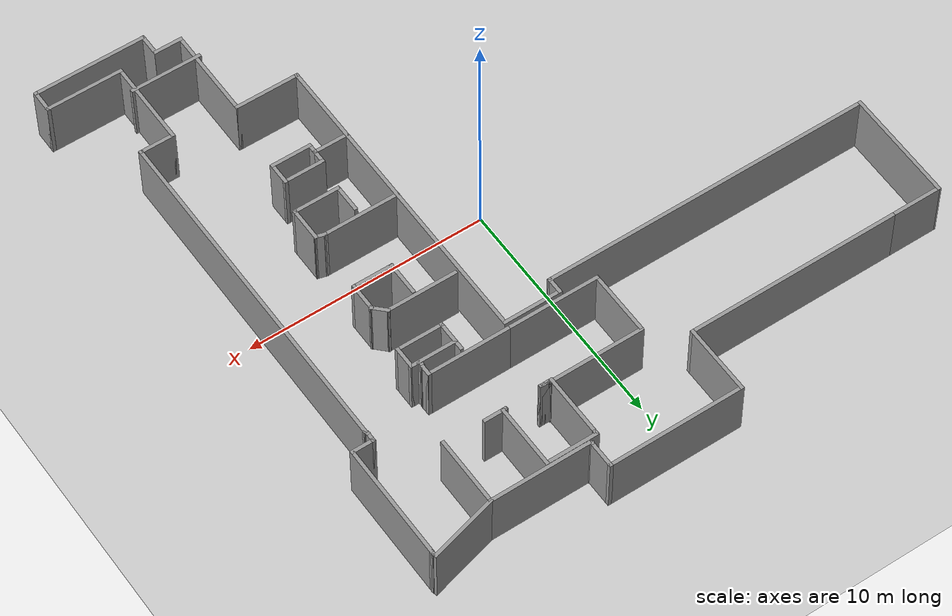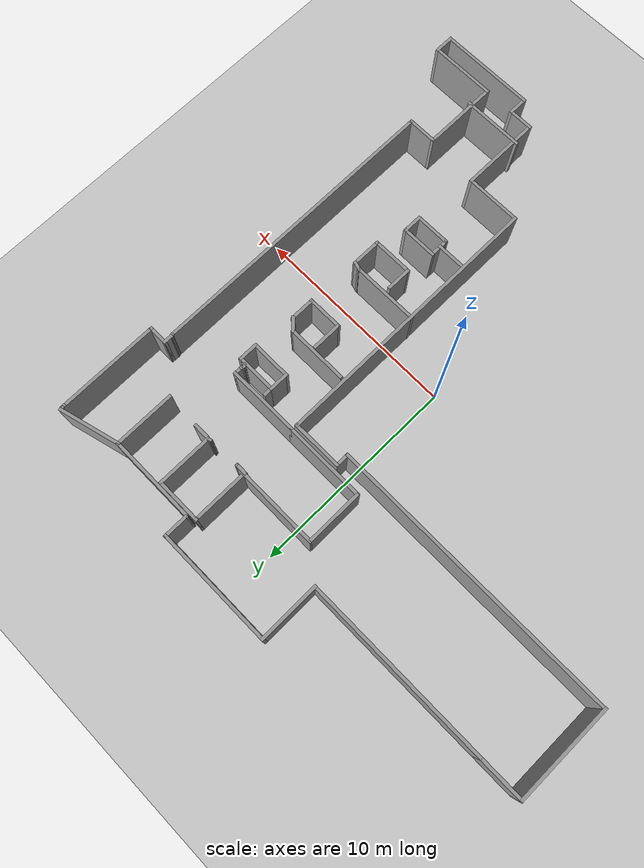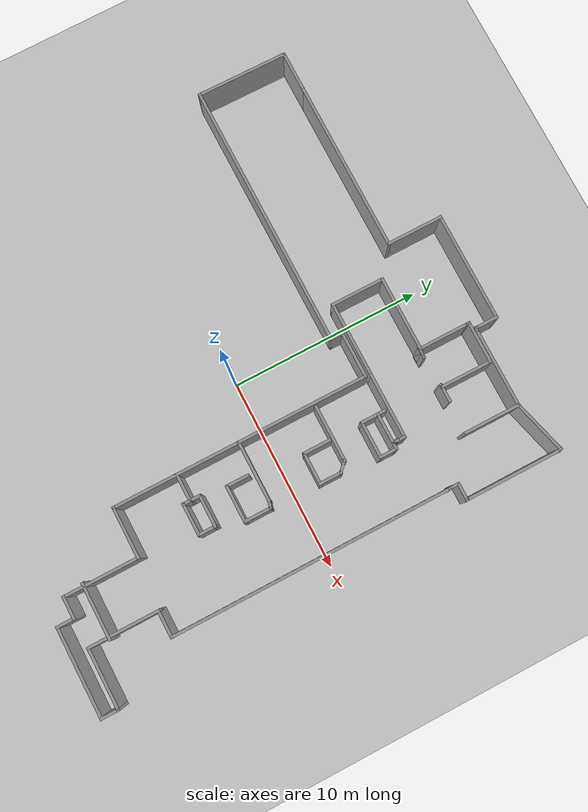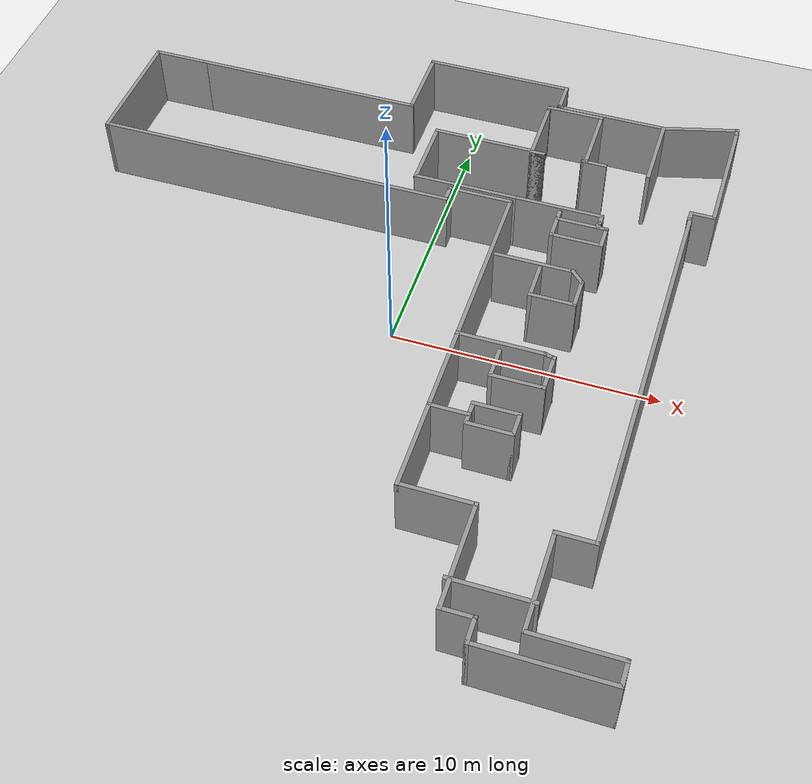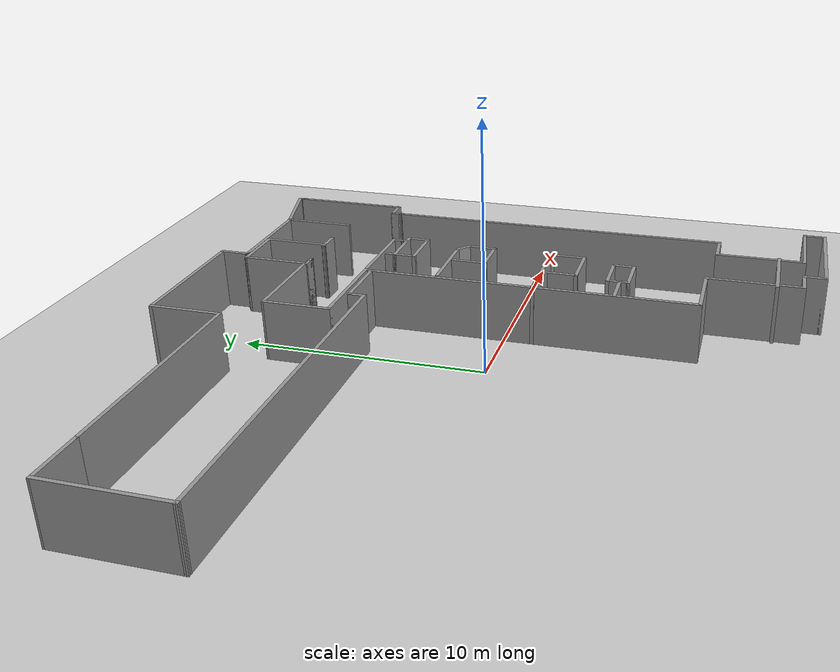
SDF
<?xml version='1.0'?>
<sdf version='1.7'>
  <world name="default">
    <include>
      <uri>model://ground_plane</uri>
    </include>
    <include>
      <uri>model://sun</uri>
    </include>

  <model name='upson'>
    <pose>-1.11412 0.038882 0 0 -0 0</pose>
    <link name='Wall_18'>
      <collision name='Wall_18_Collision'>
        <geometry>
          <box>
            <size>14 0.15 2.5</size>
          </box>
        </geometry>
        <pose>0 0 1.25 0 -0 0</pose>
      </collision>
      <visual name='Wall_18_Visual'>
        <pose>0 0 1.25 0 -0 0</pose>
        <geometry>
          <box>
            <size>14 0.15 2.5</size>
          </box>
        </geometry>
        <material>
          <script>
            <uri>file://media/materials/scripts/gazebo.material</uri>
            <name>Gazebo/Grey</name>
          </script>
          <ambient>1 1 1 1</ambient>
        </material>
        <meta>
          <layer>0</layer>
        </meta>
      </visual>
      <pose>-5.32453 4.97222 0 0 -0 0</pose>
    </link>
    <link name='Wall_19'>
      <collision name='Wall_19_Collision'>
        <geometry>
          <box>
            <size>0.75 0.15 2.5</size>
          </box>
        </geometry>
        <pose>0 0 1.25 0 -0 0</pose>
      </collision>
      <visual name='Wall_19_Visual'>
        <pose>0 0 1.25 0 -0 0</pose>
        <geometry>
          <box>
            <size>0.75 0.15 2.5</size>
          </box>
        </geometry>
        <material>
          <script>
            <uri>file://media/materials/scripts/gazebo.material</uri>
            <name>Gazebo/Grey</name>
          </script>
          <ambient>1 1 1 1</ambient>
        </material>
        <meta>
          <layer>0</layer>
        </meta>
      </visual>
      <pose>1.60047 5.27222 0 0 -0 1.5708</pose>
    </link>
    <link name='Wall_20'>
      <collision name='Wall_20_Collision'>
        <geometry>
          <box>
            <size>2.5 0.15 2.5</size>
          </box>
        </geometry>
        <pose>0 0 1.25 0 -0 0</pose>
      </collision>
      <visual name='Wall_20_Visual'>
        <pose>0 0 1.25 0 -0 0</pose>
        <geometry>
          <box>
            <size>2.5 0.15 2.5</size>
          </box>
        </geometry>
        <material>
          <script>
            <uri>file://media/materials/scripts/gazebo.material</uri>
            <name>Gazebo/Grey</name>
          </script>
          <ambient>1 1 1 1</ambient>
        </material>
        <meta>
          <layer>0</layer>
        </meta>
      </visual>
      <pose>2.77547 5.57223 0 0 -0 0</pose>
    </link>
    <link name='Wall_21'>
      <collision name='Wall_21_Collision'>
        <geometry>
          <box>
            <size>13.5 0.15 2.5</size>
          </box>
        </geometry>
        <pose>0 0 1.25 0 -0 0</pose>
      </collision>
      <visual name='Wall_21_Visual'>
        <pose>0 0 1.25 0 -0 0</pose>
        <geometry>
          <box>
            <size>13.5 0.15 2.5</size>
          </box>
        </geometry>
        <material>
          <script>
            <uri>file://media/materials/scripts/gazebo.material</uri>
            <name>Gazebo/Grey</name>
          </script>
          <ambient>1 1 1 1</ambient>
        </material>
        <meta>
          <layer>0</layer>
        </meta>
      </visual>
      <pose>3.95047 -1.10278 0 0 -0 -1.5708</pose>
    </link>
    <link name='Wall_22'>
      <collision name='Wall_22_Collision'>
        <geometry>
          <box>
            <size>2.75 0.15 2.5</size>
          </box>
        </geometry>
        <pose>0 0 1.25 0 -0 0</pose>
      </collision>
      <visual name='Wall_22_Visual'>
        <pose>0 0 1.25 0 -0 0</pose>
        <geometry>
          <box>
            <size>2.75 0.15 2.5</size>
          </box>
        </geometry>
        <material>
          <script>
            <uri>file://media/materials/scripts/gazebo.material</uri>
            <name>Gazebo/Grey</name>
          </script>
          <ambient>1 1 1 1</ambient>
        </material>
        <meta>
          <layer>0</layer>
        </meta>
      </visual>
      <pose>5.25047 -7.77778 0 0 -0 0</pose>
    </link>
    <link name='Wall_23'>
      <collision name='Wall_23_Collision'>
        <geometry>
          <box>
            <size>4 0.15 2.5</size>
          </box>
        </geometry>
        <pose>0 0 1.25 0 -0 0</pose>
      </collision>
      <visual name='Wall_23_Visual'>
        <pose>0 0 1.25 0 -0 0</pose>
        <geometry>
          <box>
            <size>4 0.15 2.5</size>
          </box>
        </geometry>
        <material>
          <script>
            <uri>file://media/materials/scripts/gazebo.material</uri>
            <name>Gazebo/Grey</name>
          </script>
          <ambient>1 1 1 1</ambient>
        </material>
        <meta>
          <layer>0</layer>
        </meta>
      </visual>
      <pose>6.55047 -9.70278 0 0 -0 -1.5708</pose>
    </link>
    <link name='Wall_24'>
      <collision name='Wall_24_Collision'>
        <geometry>
          <box>
            <size>1.25 0.15 2.5</size>
          </box>
        </geometry>
        <pose>0 0 1.25 0 -0 0</pose>
      </collision>
      <visual name='Wall_24_Visual'>
        <pose>0 0 1.25 0 -0 0</pose>
        <geometry>
          <box>
            <size>1.25 0.15 2.5</size>
          </box>
        </geometry>
        <material>
          <script>
            <uri>file://media/materials/scripts/gazebo.material</uri>
            <name>Gazebo/Grey</name>
          </script>
          <ambient>1 1 1 1</ambient>
        </material>
        <meta>
          <layer>0</layer>
        </meta>
      </visual>
      <pose>7.10047 -11.6278 0 0 -0 0</pose>
    </link>
    <link name='Wall_25'>
      <collision name='Wall_25_Collision'>
        <geometry>
          <box>
            <size>1 0.15 2.5</size>
          </box>
        </geometry>
        <pose>0 0 1.25 0 -0 0</pose>
      </collision>
      <visual name='Wall_25_Visual'>
        <pose>0 0 1.25 0 -0 0</pose>
        <geometry>
          <box>
            <size>1 0.15 2.5</size>
          </box>
        </geometry>
        <material>
          <script>
            <uri>file://media/materials/scripts/gazebo.material</uri>
            <name>Gazebo/Grey</name>
          </script>
          <ambient>1 1 1 1</ambient>
        </material>
        <meta>
          <layer>0</layer>
        </meta>
      </visual>
      <pose>7.65047 -12.0528 0 0 -0 -1.5708</pose>
    </link>
    <link name='Wall_26'>
      <collision name='Wall_26_Collision'>
        <geometry>
          <box>
            <size>4.75 0.15 2.5</size>
          </box>
        </geometry>
        <pose>0 0 1.25 0 -0 0</pose>
      </collision>
      <visual name='Wall_26_Visual'>
        <pose>0 0 1.25 0 -0 0</pose>
        <geometry>
          <box>
            <size>4.75 0.15 2.5</size>
          </box>
        </geometry>
        <material>
          <script>
            <uri>file://media/materials/scripts/gazebo.material</uri>
            <name>Gazebo/Grey</name>
          </script>
          <ambient>1 1 1 1</ambient>
        </material>
        <meta>
          <layer>0</layer>
        </meta>
      </visual>
      <pose>9.95047 -12.4778 0 0 -0 0</pose>
    </link>
    <link name='Wall_27'>
      <collision name='Wall_27_Collision'>
        <geometry>
          <box>
            <size>1 0.15 2.5</size>
          </box>
        </geometry>
        <pose>0 0 1.25 0 -0 0</pose>
      </collision>
      <visual name='Wall_27_Visual'>
        <pose>0 0 1.25 0 -0 0</pose>
        <geometry>
          <box>
            <size>1 0.15 2.5</size>
          </box>
        </geometry>
        <material>
          <script>
            <uri>file://media/materials/scripts/gazebo.material</uri>
            <name>Gazebo/Grey</name>
          </script>
          <ambient>1 1 1 1</ambient>
        </material>
        <meta>
          <layer>0</layer>
        </meta>
      </visual>
      <pose>12.2505 -12.0528 0 0 -0 1.5708</pose>
    </link>
    <link name='Wall_28'>
      <collision name='Wall_28_Collision'>
        <geometry>
          <box>
            <size>3.25 0.15 2.5</size>
          </box>
        </geometry>
        <pose>0 0 1.25 0 -0 0</pose>
      </collision>
      <visual name='Wall_28_Visual'>
        <pose>0 0 1.25 0 -0 0</pose>
        <geometry>
          <box>
            <size>3.25 0.15 2.5</size>
          </box>
        </geometry>
        <material>
          <script>
            <uri>file://media/materials/scripts/gazebo.material</uri>
            <name>Gazebo/Grey</name>
          </script>
          <ambient>1 1 1 1</ambient>
        </material>
        <meta>
          <layer>0</layer>
        </meta>
      </visual>
      <pose>10.7005 -11.6278 0 0 -0 3.14159</pose>
    </link>
    <link name='Wall_29'>
      <collision name='Wall_29_Collision'>
        <geometry>
          <box>
            <size>3.75 0.15 2.5</size>
          </box>
        </geometry>
        <pose>0 0 1.25 0 -0 0</pose>
      </collision>
      <visual name='Wall_29_Visual'>
        <pose>0 0 1.25 0 -0 0</pose>
        <geometry>
          <box>
            <size>3.75 0.15 2.5</size>
          </box>
        </geometry>
        <material>
          <script>
            <uri>file://media/materials/scripts/gazebo.material</uri>
            <name>Gazebo/Grey</name>
          </script>
          <ambient>1 1 1 1</ambient>
        </material>
        <meta>
          <layer>0</layer>
        </meta>
      </visual>
      <pose>9.15047 -9.82778 0 0 -0 1.5708</pose>
    </link>
    <link name='Wall_30'>
      <collision name='Wall_30_Collision'>
        <geometry>
          <box>
            <size>1.5 0.15 2.5</size>
          </box>
        </geometry>
        <pose>0 0 1.25 0 -0 0</pose>
      </collision>
      <visual name='Wall_30_Visual'>
        <pose>0 0 1.25 0 -0 0</pose>
        <geometry>
          <box>
            <size>1.5 0.15 2.5</size>
          </box>
        </geometry>
        <material>
          <script>
            <uri>file://media/materials/scripts/gazebo.material</uri>
            <name>Gazebo/Grey</name>
          </script>
          <ambient>1 1 1 1</ambient>
        </material>
        <meta>
          <layer>0</layer>
        </meta>
      </visual>
      <pose>9.82547 -8.02778 0 0 -0 0</pose>
    </link>
    <link name='Wall_31'>
      <collision name='Wall_31_Collision'>
        <geometry>
          <box>
            <size>14.75 0.15 2.5</size>
          </box>
        </geometry>
        <pose>0 0 1.25 0 -0 0</pose>
      </collision>
      <visual name='Wall_31_Visual'>
        <pose>0 0 1.25 0 -0 0</pose>
        <geometry>
          <box>
            <size>14.75 0.15 2.5</size>
          </box>
        </geometry>
        <material>
          <script>
            <uri>file://media/materials/scripts/gazebo.material</uri>
            <name>Gazebo/Grey</name>
          </script>
          <ambient>1 1 1 1</ambient>
        </material>
        <meta>
          <layer>0</layer>
        </meta>
      </visual>
      <pose>10.5005 -0.727775 0 0 -0 1.5708</pose>
    </link>
    <link name='Wall_32'>
      <collision name='Wall_32_Collision'>
        <geometry>
          <box>
            <size>0.25 0.15 2.5</size>
          </box>
        </geometry>
        <pose>0 0 1.25 0 -0 0</pose>
      </collision>
      <visual name='Wall_32_Visual'>
        <pose>0 0 1.25 0 -0 0</pose>
        <geometry>
          <box>
            <size>0.25 0.15 2.5</size>
          </box>
        </geometry>
        <material>
          <script>
            <uri>file://media/materials/scripts/gazebo.material</uri>
            <name>Gazebo/Grey</name>
          </script>
          <ambient>1 1 1 1</ambient>
        </material>
        <meta>
          <layer>0</layer>
        </meta>
      </visual>
      <pose>10.4875 6.62052 0 0 -0 1.8326</pose>
    </link>
    <link name='Wall_33'>
      <collision name='Wall_33_Collision'>
        <geometry>
          <box>
            <size>0.5 0.15 2.5</size>
          </box>
        </geometry>
        <pose>0 0 1.25 0 -0 0</pose>
      </collision>
      <visual name='Wall_33_Visual'>
        <pose>0 0 1.25 0 -0 0</pose>
        <geometry>
          <box>
            <size>0.5 0.15 2.5</size>
          </box>
        </geometry>
        <material>
          <script>
            <uri>file://media/materials/scripts/gazebo.material</uri>
            <name>Gazebo/Grey</name>
          </script>
          <ambient>1 1 1 1</ambient>
        </material>
        <meta>
          <layer>0</layer>
        </meta>
      </visual>
      <pose>10.4746 6.84382 0 0 -0 1.5708</pose>
    </link>
    <link name='Wall_34'>
      <collision name='Wall_34_Collision'>
        <geometry>
          <box>
            <size>1 0.15 2.5</size>
          </box>
        </geometry>
        <pose>0 0 1.25 0 -0 0</pose>
      </collision>
      <visual name='Wall_34_Visual'>
        <pose>0 0 1.25 0 -0 0</pose>
        <geometry>
          <box>
            <size>1 0.15 2.5</size>
          </box>
        </geometry>
        <material>
          <script>
            <uri>file://media/materials/scripts/gazebo.material</uri>
            <name>Gazebo/Grey</name>
          </script>
          <ambient>1 1 1 1</ambient>
        </material>
        <meta>
          <layer>0</layer>
        </meta>
      </visual>
      <pose>10.8996 7.01882 0 0 -0 0</pose>
    </link>
    <link name='Wall_35'>
      <collision name='Wall_35_Collision'>
        <geometry>
          <box>
            <size>5 0.15 2.5</size>
          </box>
        </geometry>
        <pose>0 0 1.25 0 -0 0</pose>
      </collision>
      <visual name='Wall_35_Visual'>
        <pose>0 0 1.25 0 -0 0</pose>
        <geometry>
          <box>
            <size>5 0.15 2.5</size>
          </box>
        </geometry>
        <material>
          <script>
            <uri>file://media/materials/scripts/gazebo.material</uri>
            <name>Gazebo/Grey</name>
          </script>
          <ambient>1 1 1 1</ambient>
        </material>
        <meta>
          <layer>0</layer>
        </meta>
      </visual>
      <pose>11.3246 9.44382 0 0 -0 1.5708</pose>
    </link>
    <link name='Wall_36'>
      <collision name='Wall_36_Collision'>
        <geometry>
          <box>
            <size>0.25 0.15 2.5</size>
          </box>
        </geometry>
        <pose>0 0 1.25 0 -0 0</pose>
      </collision>
      <visual name='Wall_36_Visual'>
        <pose>0 0 1.25 0 -0 0</pose>
        <geometry>
          <box>
            <size>0.25 0.15 2.5</size>
          </box>
        </geometry>
        <material>
          <script>
            <uri>file://media/materials/scripts/gazebo.material</uri>
            <name>Gazebo/Grey</name>
          </script>
          <ambient>1 1 1 1</ambient>
        </material>
        <meta>
          <layer>0</layer>
        </meta>
      </visual>
      <pose>11.3246 11.9188 0 0 -0 1.5708</pose>
    </link>
    <link name='Wall_37'>
      <collision name='Wall_37_Collision'>
        <geometry>
          <box>
            <size>0.25 0.15 2.5</size>
          </box>
        </geometry>
        <pose>0 0 1.25 0 -0 0</pose>
      </collision>
      <visual name='Wall_37_Visual'>
        <pose>0 0 1.25 0 -0 0</pose>
        <geometry>
          <box>
            <size>0.25 0.15 2.5</size>
          </box>
        </geometry>
        <material>
          <script>
            <uri>file://media/materials/scripts/gazebo.material</uri>
            <name>Gazebo/Grey</name>
          </script>
          <ambient>1 1 1 1</ambient>
        </material>
        <meta>
          <layer>0</layer>
        </meta>
      </visual>
      <pose>11.3116 12.0171 0 0 -0 1.8326</pose>
    </link>
    <link name='Wall_38'>
      <collision name='Wall_38_Collision'>
        <geometry>
          <box>
            <size>3 0.15 2.5</size>
          </box>
        </geometry>
        <pose>0 0 1.25 0 -0 0</pose>
      </collision>
      <visual name='Wall_38_Visual'>
        <pose>0 0 1.25 0 -0 0</pose>
        <geometry>
          <box>
            <size>3 0.15 2.5</size>
          </box>
        </geometry>
        <material>
          <script>
            <uri>file://media/materials/scripts/gazebo.material</uri>
            <name>Gazebo/Grey</name>
          </script>
          <ambient>1 1 1 1</ambient>
        </material>
        <meta>
          <layer>0</layer>
        </meta>
      </visual>
      <pose>9.92226 11.6966 0 0 -0 -2.87979</pose>
    </link>
    <link name='Wall_39'>
      <collision name='Wall_39_Collision'>
        <geometry>
          <box>
            <size>4.25 0.15 2.5</size>
          </box>
        </geometry>
        <pose>0 0 1.25 0 -0 0</pose>
      </collision>
      <visual name='Wall_39_Visual'>
        <pose>0 0 1.25 0 -0 0</pose>
        <geometry>
          <box>
            <size>4.25 0.15 2.5</size>
          </box>
        </geometry>
        <material>
          <script>
            <uri>file://media/materials/scripts/gazebo.material</uri>
            <name>Gazebo/Grey</name>
          </script>
          <ambient>1 1 1 1</ambient>
        </material>
        <meta>
          <layer>0</layer>
        </meta>
      </visual>
      <pose>6.49582 11.3278 0 0 -0 3.14159</pose>
    </link>
    <link name='Wall_40'>
      <collision name='Wall_40_Collision'>
        <geometry>
          <box>
            <size>0.25 0.15 2.5</size>
          </box>
        </geometry>
        <pose>0 0 1.25 0 -0 0</pose>
      </collision>
      <visual name='Wall_40_Visual'>
        <pose>0 0 1.25 0 -0 0</pose>
        <geometry>
          <box>
            <size>0.25 0.15 2.5</size>
          </box>
        </geometry>
        <material>
          <script>
            <uri>file://media/materials/scripts/gazebo.material</uri>
            <name>Gazebo/Grey</name>
          </script>
          <ambient>1 1 1 1</ambient>
        </material>
        <meta>
          <layer>0</layer>
        </meta>
      </visual>
      <pose>4.40252 11.3528 0 0 -0 2.61799</pose>
    </link>
    <link name='Wall_41'>
      <collision name='Wall_41_Collision'>
        <geometry>
          <box>
            <size>1.25 0.15 2.5</size>
          </box>
        </geometry>
        <pose>0 0 1.25 0 -0 0</pose>
      </collision>
      <visual name='Wall_41_Visual'>
        <pose>0 0 1.25 0 -0 0</pose>
        <geometry>
          <box>
            <size>1.25 0.15 2.5</size>
          </box>
        </geometry>
        <material>
          <script>
            <uri>file://media/materials/scripts/gazebo.material</uri>
            <name>Gazebo/Grey</name>
          </script>
          <ambient>1 1 1 1</ambient>
        </material>
        <meta>
          <layer>0</layer>
        </meta>
      </visual>
      <pose>4.35921 11.9278 0 0 -0 1.5708</pose>
    </link>
    <link name='Wall_42'>
      <collision name='Wall_42_Collision'>
        <geometry>
          <box>
            <size>5.75 0.15 2.5</size>
          </box>
        </geometry>
        <pose>0 0 1.25 0 -0 0</pose>
      </collision>
      <visual name='Wall_42_Visual'>
        <pose>0 0 1.25 0 -0 0</pose>
        <geometry>
          <box>
            <size>5.75 0.15 2.5</size>
          </box>
        </geometry>
        <material>
          <script>
            <uri>file://media/materials/scripts/gazebo.material</uri>
            <name>Gazebo/Grey</name>
          </script>
          <ambient>1 1 1 1</ambient>
        </material>
        <meta>
          <layer>0</layer>
        </meta>
      </visual>
      <pose>1.55922 12.4778 0 0 -0 3.14159</pose>
    </link>
    <link name='Wall_43'>
      <collision name='Wall_43_Collision'>
        <geometry>
          <box>
            <size>3 0.15 2.5</size>
          </box>
        </geometry>
        <pose>0 0 1.25 0 -0 0</pose>
      </collision>
      <visual name='Wall_43_Visual'>
        <pose>0 0 1.25 0 -0 0</pose>
        <geometry>
          <box>
            <size>3 0.15 2.5</size>
          </box>
        </geometry>
        <material>
          <script>
            <uri>file://media/materials/scripts/gazebo.material</uri>
            <name>Gazebo/Grey</name>
          </script>
          <ambient>1 1 1 1</ambient>
        </material>
        <meta>
          <layer>0</layer>
        </meta>
      </visual>
      <pose>-1.24078 11.0528 0 0 -0 -1.5708</pose>
    </link>
    <link name='Wall_44'>
      <collision name='Wall_44_Collision'>
        <geometry>
          <box>
            <size>9 0.15 2.5</size>
          </box>
        </geometry>
        <pose>0 0 1.25 0 -0 0</pose>
      </collision>
      <visual name='Wall_44_Visual'>
        <pose>0 0 1.25 0 -0 0</pose>
        <geometry>
          <box>
            <size>9 0.15 2.5</size>
          </box>
        </geometry>
        <material>
          <script>
            <uri>file://media/materials/scripts/gazebo.material</uri>
            <name>Gazebo/Grey</name>
          </script>
          <ambient>1 1 1 1</ambient>
        </material>
        <meta>
          <layer>0</layer>
        </meta>
      </visual>
      <pose>-5.66578 9.62778 0 0 -0 3.14159</pose>
    </link>
    <link name='Wall_45'>
      <collision name='Wall_45_Collision'>
        <geometry>
          <box>
            <size>2.25 0.15 2.5</size>
          </box>
        </geometry>
        <pose>0 0 1.25 0 -0 0</pose>
      </collision>
      <visual name='Wall_45_Visual'>
        <pose>0 0 1.25 0 -0 0</pose>
        <geometry>
          <box>
            <size>2.25 0.15 2.5</size>
          </box>
        </geometry>
        <material>
          <script>
            <uri>file://media/materials/scripts/gazebo.material</uri>
            <name>Gazebo/Grey</name>
          </script>
          <ambient>1 1 1 1</ambient>
        </material>
        <meta>
          <layer>0</layer>
        </meta>
      </visual>
      <pose>-11.1408 9.62778 0 0 -0 3.14159</pose>
    </link>
    <link name='Wall_46'>
      <collision name='Wall_46_Collision'>
        <geometry>
          <box>
            <size>4.80592 0.15 2.5</size>
          </box>
        </geometry>
        <pose>0 0 1.25 0 -0 0</pose>
      </collision>
      <visual name='Wall_46_Visual'>
        <pose>0 0 1.25 0 -0 0</pose>
        <geometry>
          <box>
            <size>4.80592 0.15 2.5</size>
          </box>
        </geometry>
        <material>
          <script>
            <uri>file://media/materials/scripts/gazebo.material</uri>
            <name>Gazebo/Grey</name>
          </script>
          <ambient>1 1 1 1</ambient>
        </material>
        <meta>
          <layer>0</layer>
        </meta>
      </visual>
      <pose>-12.2202 7.3 0 0 -0 -1.58341</pose>
    </link>
    <link name='Wall_48'>
      <collision name='Wall_48_Collision'>
        <geometry>
          <box>
            <size>2.75 0.15 2.5</size>
          </box>
        </geometry>
        <pose>0 0 1.25 0 -0 0</pose>
      </collision>
      <visual name='Wall_48_Visual'>
        <pose>0 0 1.25 0 -0 0</pose>
        <geometry>
          <box>
            <size>2.75 0.15 2.5</size>
          </box>
        </geometry>
        <material>
          <script>
            <uri>file://media/materials/scripts/gazebo.material</uri>
            <name>Gazebo/Grey</name>
          </script>
          <ambient>1 1 1 1</ambient>
        </material>
        <meta>
          <layer>0</layer>
        </meta>
      </visual>
      <pose>0.16752 7.13597 0 0 -0 -1.5708</pose>
    </link>
    <link name='Wall_49'>
      <collision name='Wall_49_Collision'>
        <geometry>
          <box>
            <size>4 0.15 2.5</size>
          </box>
        </geometry>
        <pose>0 0 1.25 0 -0 0</pose>
      </collision>
      <visual name='Wall_49_Visual'>
        <pose>0 0 1.25 0 -0 0</pose>
        <geometry>
          <box>
            <size>4 0.15 2.5</size>
          </box>
        </geometry>
        <material>
          <script>
            <uri>file://media/materials/scripts/gazebo.material</uri>
            <name>Gazebo/Grey</name>
          </script>
          <ambient>1 1 1 1</ambient>
        </material>
        <meta>
          <layer>0</layer>
        </meta>
      </visual>
      <pose>2.09252 5.83597 0 0 -0 0</pose>
    </link>
    <link name='Wall_50'>
      <collision name='Wall_50_Collision'>
        <geometry>
          <box>
            <size>3.5 0.15 2.5</size>
          </box>
        </geometry>
        <pose>0 0 1.25 0 -0 0</pose>
      </collision>
      <visual name='Wall_50_Visual'>
        <pose>0 0 1.25 0 -0 0</pose>
        <geometry>
          <box>
            <size>3.5 0.15 2.5</size>
          </box>
        </geometry>
        <material>
          <script>
            <uri>file://media/materials/scripts/gazebo.material</uri>
            <name>Gazebo/Grey</name>
          </script>
          <ambient>1 1 1 1</ambient>
        </material>
        <meta>
          <layer>0</layer>
        </meta>
      </visual>
      <pose>5.69252 5.83597 0 0 -0 0</pose>
    </link>
    <link name='Wall_51'>
      <collision name='Wall_51_Collision'>
        <geometry>
          <box>
            <size>0.5 0.15 2.5</size>
          </box>
        </geometry>
        <pose>0 0 1.25 0 -0 0</pose>
      </collision>
      <visual name='Wall_51_Visual'>
        <pose>0 0 1.25 0 -0 0</pose>
        <geometry>
          <box>
            <size>0.5 0.15 2.5</size>
          </box>
        </geometry>
        <material>
          <script>
            <uri>file://media/materials/scripts/gazebo.material</uri>
            <name>Gazebo/Grey</name>
          </script>
          <ambient>1 1 1 1</ambient>
        </material>
        <meta>
          <layer>0</layer>
        </meta>
      </visual>
      <pose>7.36752 5.66097 0 0 -0 -1.5708</pose>
    </link>
    <link name='Wall_52'>
      <collision name='Wall_52_Collision'>
        <geometry>
          <box>
            <size>0.25 0.15 2.5</size>
          </box>
        </geometry>
        <pose>0 0 1.25 0 -0 0</pose>
      </collision>
      <visual name='Wall_52_Visual'>
        <pose>0 0 1.25 0 -0 0</pose>
        <geometry>
          <box>
            <size>0.25 0.15 2.5</size>
          </box>
        </geometry>
        <material>
          <script>
            <uri>file://media/materials/scripts/gazebo.material</uri>
            <name>Gazebo/Grey</name>
          </script>
          <ambient>1 1 1 1</ambient>
        </material>
        <meta>
          <layer>0</layer>
        </meta>
      </visual>
      <pose>7.35458 5.43767 0 0 -0 -1.8326</pose>
    </link>
    <link name='Wall_53'>
      <collision name='Wall_53_Collision'>
        <geometry>
          <box>
            <size>0.25 0.15 2.5</size>
          </box>
        </geometry>
        <pose>0 0 1.25 0 -0 0</pose>
      </collision>
      <visual name='Wall_53_Visual'>
        <pose>0 0 1.25 0 -0 0</pose>
        <geometry>
          <box>
            <size>0.25 0.15 2.5</size>
          </box>
        </geometry>
        <material>
          <script>
            <uri>file://media/materials/scripts/gazebo.material</uri>
            <name>Gazebo/Grey</name>
          </script>
          <ambient>1 1 1 1</ambient>
        </material>
        <meta>
          <layer>0</layer>
        </meta>
      </visual>
      <pose>7.35458 5.34108 0 0 -0 -1.309</pose>
    </link>
    <link name='Wall_55'>
      <collision name='Wall_55_Collision'>
        <geometry>
          <box>
            <size>0.5 0.15 2.5</size>
          </box>
        </geometry>
        <pose>0 0 1.25 0 -0 0</pose>
      </collision>
      <visual name='Wall_55_Visual'>
        <pose>0 0 1.25 0 -0 0</pose>
        <geometry>
          <box>
            <size>0.5 0.15 2.5</size>
          </box>
        </geometry>
        <material>
          <script>
            <uri>file://media/materials/scripts/gazebo.material</uri>
            <name>Gazebo/Grey</name>
          </script>
          <ambient>1 1 1 1</ambient>
        </material>
        <meta>
          <layer>0</layer>
        </meta>
      </visual>
      <pose>4.17284 8.47095 0 0 -0 0</pose>
    </link>
    <link name='Wall_56'>
      <collision name='Wall_56_Collision'>
        <geometry>
          <box>
            <size>0.25 0.15 2.5</size>
          </box>
        </geometry>
        <pose>0 0 1.25 0 -0 0</pose>
      </collision>
      <visual name='Wall_56_Visual'>
        <pose>0 0 1.25 0 -0 0</pose>
        <geometry>
          <box>
            <size>0.25 0.15 2.5</size>
          </box>
        </geometry>
        <material>
          <script>
            <uri>file://media/materials/scripts/gazebo.material</uri>
            <name>Gazebo/Grey</name>
          </script>
          <ambient>1 1 1 1</ambient>
        </material>
        <meta>
          <layer>0</layer>
        </meta>
      </visual>
      <pose>4.39784 8.47095 0 0 -0 0</pose>
    </link>
    <link name='Wall_57'>
      <collision name='Wall_57_Collision'>
        <geometry>
          <box>
            <size>0.6 0.15 2.5</size>
          </box>
        </geometry>
        <pose>0 0 1.25 0 -0 0</pose>
      </collision>
      <visual name='Wall_57_Visual'>
        <pose>0 0 1.25 0 -0 0</pose>
        <geometry>
          <box>
            <size>0.6 0.15 2.5</size>
          </box>
        </geometry>
        <material>
          <script>
            <uri>file://media/materials/scripts/gazebo.material</uri>
            <name>Gazebo/Grey</name>
          </script>
          <ambient>1 1 1 1</ambient>
        </material>
        <meta>
          <layer>0</layer>
        </meta>
      </visual>
      <pose>4.22284 8.47095 0 0 -0 3.14159</pose>
    </link>
    <link name='Wall_58'>
      <collision name='Wall_58_Collision'>
        <geometry>
          <box>
            <size>0.6 0.15 2.5</size>
          </box>
        </geometry>
        <pose>0 0 1.25 0 -0 0</pose>
      </collision>
      <visual name='Wall_58_Visual'>
        <pose>0 0 1.25 0 -0 0</pose>
        <geometry>
          <box>
            <size>0.6 0.15 2.5</size>
          </box>
        </geometry>
        <material>
          <script>
            <uri>file://media/materials/scripts/gazebo.material</uri>
            <name>Gazebo/Grey</name>
          </script>
          <ambient>1 1 1 1</ambient>
        </material>
        <meta>
          <layer>0</layer>
        </meta>
      </visual>
      <pose>4.22284 8.47095 0 0 -0 0</pose>
    </link>
    <link name='Wall_59'>
      <collision name='Wall_59_Collision'>
        <geometry>
          <box>
            <size>0.6 0.15 2.5</size>
          </box>
        </geometry>
        <pose>0 0 1.25 0 -0 0</pose>
      </collision>
      <visual name='Wall_59_Visual'>
        <pose>0 0 1.25 0 -0 0</pose>
        <geometry>
          <box>
            <size>0.6 0.15 2.5</size>
          </box>
        </geometry>
        <material>
          <script>
            <uri>file://media/materials/scripts/gazebo.material</uri>
            <name>Gazebo/Grey</name>
          </script>
          <ambient>1 1 1 1</ambient>
        </material>
        <meta>
          <layer>0</layer>
        </meta>
      </visual>
      <pose>4.22284 8.47095 0 0 -0 3.14159</pose>
    </link>
    <link name='Wall_60'>
      <collision name='Wall_60_Collision'>
        <geometry>
          <box>
            <size>2.75 0.15 2.5</size>
          </box>
        </geometry>
        <pose>0 0 1.25 0 -0 0</pose>
      </collision>
      <visual name='Wall_60_Visual'>
        <pose>0 0 1.25 0 -0 0</pose>
        <geometry>
          <box>
            <size>2.75 0.15 2.5</size>
          </box>
        </geometry>
        <material>
          <script>
            <uri>file://media/materials/scripts/gazebo.material</uri>
            <name>Gazebo/Grey</name>
          </script>
          <ambient>1 1 1 1</ambient>
        </material>
        <meta>
          <layer>0</layer>
        </meta>
      </visual>
      <pose>3.99784 9.77095 0 0 -0 1.5708</pose>
    </link>
    <link name='Wall_61'>
      <collision name='Wall_61_Collision'>
        <geometry>
          <box>
            <size>0.15 0.15 2.5</size>
          </box>
        </geometry>
        <pose>0 0 1.25 0 -0 0</pose>
      </collision>
      <visual name='Wall_61_Visual'>
        <pose>0 0 1.25 0 -0 0</pose>
        <geometry>
          <box>
            <size>0.15 0.15 2.5</size>
          </box>
        </geometry>
        <material>
          <script>
            <uri>file://media/materials/scripts/gazebo.material</uri>
            <name>Gazebo/Grey</name>
          </script>
          <ambient>1 1 1 1</ambient>
        </material>
        <meta>
          <layer>0</layer>
        </meta>
      </visual>
      <pose>3.99784 11.0709 0 0 -0 0</pose>
    </link>
    <link name='Wall_62'>
      <collision name='Wall_62_Collision'>
        <geometry>
          <box>
            <size>0.25 0.15 2.5</size>
          </box>
        </geometry>
        <pose>0 0 1.25 0 -0 0</pose>
      </collision>
      <visual name='Wall_62_Visual'>
        <pose>0 0 1.25 0 -0 0</pose>
        <geometry>
          <box>
            <size>0.25 0.15 2.5</size>
          </box>
        </geometry>
        <material>
          <script>
            <uri>file://media/materials/scripts/gazebo.material</uri>
            <name>Gazebo/Grey</name>
          </script>
          <ambient>1 1 1 1</ambient>
        </material>
        <meta>
          <layer>0</layer>
        </meta>
      </visual>
      <pose>3.99784 11.1209 0 0 -0 1.5708</pose>
    </link>
    <link name='Wall_63'>
      <collision name='Wall_63_Collision'>
        <geometry>
          <box>
            <size>2.25 0.15 2.5</size>
          </box>
        </geometry>
        <pose>0 0 1.25 0 -0 0</pose>
      </collision>
      <visual name='Wall_63_Visual'>
        <pose>0 0 1.25 0 -0 0</pose>
        <geometry>
          <box>
            <size>2.25 0.15 2.5</size>
          </box>
        </geometry>
        <material>
          <script>
            <uri>file://media/materials/scripts/gazebo.material</uri>
            <name>Gazebo/Grey</name>
          </script>
          <ambient>1 1 1 1</ambient>
        </material>
        <meta>
          <layer>0</layer>
        </meta>
      </visual>
      <pose>5.04784 11.1709 0 0 -0 0</pose>
    </link>
    <link name='Wall_64'>
      <collision name='Wall_64_Collision'>
        <geometry>
          <box>
            <size>2.75 0.15 2.5</size>
          </box>
        </geometry>
        <pose>0 0 1.25 0 -0 0</pose>
      </collision>
      <visual name='Wall_64_Visual'>
        <pose>0 0 1.25 0 -0 0</pose>
        <geometry>
          <box>
            <size>2.75 0.15 2.5</size>
          </box>
        </geometry>
        <material>
          <script>
            <uri>file://media/materials/scripts/gazebo.material</uri>
            <name>Gazebo/Grey</name>
          </script>
          <ambient>1 1 1 1</ambient>
        </material>
        <meta>
          <layer>0</layer>
        </meta>
      </visual>
      <pose>6.09784 9.87095 0 0 -0 -1.5708</pose>
    </link>
    <link name='Wall_65'>
      <collision name='Wall_65_Collision'>
        <geometry>
          <box>
            <size>0.25 0.15 2.5</size>
          </box>
        </geometry>
        <pose>0 0 1.25 0 -0 0</pose>
      </collision>
      <visual name='Wall_65_Visual'>
        <pose>0 0 1.25 0 -0 0</pose>
        <geometry>
          <box>
            <size>0.25 0.15 2.5</size>
          </box>
        </geometry>
        <material>
          <script>
            <uri>file://media/materials/scripts/gazebo.material</uri>
            <name>Gazebo/Grey</name>
          </script>
          <ambient>1 1 1 1</ambient>
        </material>
        <meta>
          <layer>0</layer>
        </meta>
      </visual>
      <pose>6.04955 8.558 0 0 -0 -2.87979</pose>
    </link>
    <link name='Wall_66'>
      <collision name='Wall_66_Collision'>
        <geometry>
          <box>
            <size>1 0.15 2.5</size>
          </box>
        </geometry>
        <pose>0 0 1.25 0 -0 0</pose>
      </collision>
      <visual name='Wall_66_Visual'>
        <pose>0 0 1.25 0 -0 0</pose>
        <geometry>
          <box>
            <size>1 0.15 2.5</size>
          </box>
        </geometry>
        <material>
          <script>
            <uri>file://media/materials/scripts/gazebo.material</uri>
            <name>Gazebo/Grey</name>
          </script>
          <ambient>1 1 1 1</ambient>
        </material>
        <meta>
          <layer>0</layer>
        </meta>
      </visual>
      <pose>6.42625 8.54506 0 0 -0 0</pose>
    </link>
    <link name='Wall_68'>
      <collision name='Wall_68_Collision'>
        <geometry>
          <box>
            <size>3 0.15 2.5</size>
          </box>
        </geometry>
        <pose>0 0 1.25 0 -0 0</pose>
      </collision>
      <visual name='Wall_68_Visual'>
        <pose>0 0 1.25 0 -0 0</pose>
        <geometry>
          <box>
            <size>3 0.15 2.5</size>
          </box>
        </geometry>
        <material>
          <script>
            <uri>file://media/materials/scripts/gazebo.material</uri>
            <name>Gazebo/Grey</name>
          </script>
          <ambient>1 1 1 1</ambient>
        </material>
        <meta>
          <layer>0</layer>
        </meta>
      </visual>
      <pose>8.54582 9.90278 0 0 -0 -1.5708</pose>
    </link>
    <link name='Wall_70'>
      <collision name='Wall_70_Collision'>
        <geometry>
          <box>
            <size>2 0.15 2.5</size>
          </box>
        </geometry>
        <pose>0 0 1.25 0 -0 0</pose>
      </collision>
      <visual name='Wall_70_Visual'>
        <pose>0 0 1.25 0 -0 0</pose>
        <geometry>
          <box>
            <size>2 0.15 2.5</size>
          </box>
        </geometry>
        <material>
          <script>
            <uri>file://media/materials/scripts/gazebo.material</uri>
            <name>Gazebo/Grey</name>
          </script>
          <ambient>1 1 1 1</ambient>
        </material>
        <meta>
          <layer>0</layer>
        </meta>
      </visual>
      <pose>6.75315 5.23258 0 0 -0 0</pose>
    </link>
    <link name='Wall_71'>
      <collision name='Wall_71_Collision'>
        <geometry>
          <box>
            <size>1 0.15 2.5</size>
          </box>
        </geometry>
        <pose>0 0 1.25 0 -0 0</pose>
      </collision>
      <visual name='Wall_71_Visual'>
        <pose>0 0 1.25 0 -0 0</pose>
        <geometry>
          <box>
            <size>1 0.15 2.5</size>
          </box>
        </geometry>
        <material>
          <script>
            <uri>file://media/materials/scripts/gazebo.material</uri>
            <name>Gazebo/Grey</name>
          </script>
          <ambient>1 1 1 1</ambient>
        </material>
        <meta>
          <layer>0</layer>
        </meta>
      </visual>
      <pose>7.67814 4.80758 0 0 -0 -1.5708</pose>
    </link>
    <link name='Wall_72'>
      <collision name='Wall_72_Collision'>
        <geometry>
          <box>
            <size>2 0.15 2.5</size>
          </box>
        </geometry>
        <pose>0 0 1.25 0 -0 0</pose>
      </collision>
      <visual name='Wall_72_Visual'>
        <pose>0 0 1.25 0 -0 0</pose>
        <geometry>
          <box>
            <size>2 0.15 2.5</size>
          </box>
        </geometry>
        <material>
          <script>
            <uri>file://media/materials/scripts/gazebo.material</uri>
            <name>Gazebo/Grey</name>
          </script>
          <ambient>1 1 1 1</ambient>
        </material>
        <meta>
          <layer>0</layer>
        </meta>
      </visual>
      <pose>6.75315 4.38258 0 0 -0 3.14159</pose>
    </link>
    <link name='Wall_73'>
      <collision name='Wall_73_Collision'>
        <geometry>
          <box>
            <size>1 0.15 2.5</size>
          </box>
        </geometry>
        <pose>0 0 1.25 0 -0 0</pose>
      </collision>
      <visual name='Wall_73_Visual'>
        <pose>0 0 1.25 0 -0 0</pose>
        <geometry>
          <box>
            <size>1 0.15 2.5</size>
          </box>
        </geometry>
        <material>
          <script>
            <uri>file://media/materials/scripts/gazebo.material</uri>
            <name>Gazebo/Grey</name>
          </script>
          <ambient>1 1 1 1</ambient>
        </material>
        <meta>
          <layer>0</layer>
        </meta>
      </visual>
      <pose>5.82815 4.80758 0 0 -0 1.5708</pose>
    </link>
    <link name='Wall_74'>
      <collision name='Wall_74_Collision'>
        <geometry>
          <box>
            <size>0.5 0.15 2.5</size>
          </box>
        </geometry>
        <pose>0 0 1.25 0 -0 0</pose>
      </collision>
      <visual name='Wall_74_Visual'>
        <pose>0 0 1.25 0 -0 0</pose>
        <geometry>
          <box>
            <size>0.5 0.15 2.5</size>
          </box>
        </geometry>
        <material>
          <script>
            <uri>file://media/materials/scripts/gazebo.material</uri>
            <name>Gazebo/Grey</name>
          </script>
          <ambient>1 1 1 1</ambient>
        </material>
        <meta>
          <layer>0</layer>
        </meta>
      </visual>
      <pose>5.82815 5.40758 0 0 -0 1.5708</pose>
    </link>
    <link name='Wall_76'>
      <collision name='Wall_76_Collision'>
        <geometry>
          <box>
            <size>3 0.15 2.5</size>
          </box>
        </geometry>
        <pose>0 0 1.25 0 -0 0</pose>
      </collision>
      <visual name='Wall_76_Visual'>
        <pose>0 0 1.25 0 -0 0</pose>
        <geometry>
          <box>
            <size>3 0.15 2.5</size>
          </box>
        </geometry>
        <material>
          <script>
            <uri>file://media/materials/scripts/gazebo.material</uri>
            <name>Gazebo/Grey</name>
          </script>
          <ambient>1 1 1 1</ambient>
        </material>
        <meta>
          <layer>0</layer>
        </meta>
      </visual>
      <pose>5.60393 2.81197 0 0 -0 0</pose>
    </link>
    <link name='Wall_77'>
      <collision name='Wall_77_Collision'>
        <geometry>
          <box>
            <size>0.75 0.15 2.5</size>
          </box>
        </geometry>
        <pose>0 0 1.25 0 -0 0</pose>
      </collision>
      <visual name='Wall_77_Visual'>
        <pose>0 0 1.25 0 -0 0</pose>
        <geometry>
          <box>
            <size>0.75 0.15 2.5</size>
          </box>
        </geometry>
        <material>
          <script>
            <uri>file://media/materials/scripts/gazebo.material</uri>
            <name>Gazebo/Grey</name>
          </script>
          <ambient>1 1 1 1</ambient>
        </material>
        <meta>
          <layer>0</layer>
        </meta>
      </visual>
      <pose>7.24106 2.59983 0 0 -0 -0.785398</pose>
    </link>
    <link name='Wall_78'>
      <collision name='Wall_78_Collision'>
        <geometry>
          <box>
            <size>1.25 0.15 2.5</size>
          </box>
        </geometry>
        <pose>0 0 1.25 0 -0 0</pose>
      </collision>
      <visual name='Wall_78_Visual'>
        <pose>0 0 1.25 0 -0 0</pose>
        <geometry>
          <box>
            <size>1.25 0.15 2.5</size>
          </box>
        </geometry>
        <material>
          <script>
            <uri>file://media/materials/scripts/gazebo.material</uri>
            <name>Gazebo/Grey</name>
          </script>
          <ambient>1 1 1 1</ambient>
        </material>
        <meta>
          <layer>0</layer>
        </meta>
      </visual>
      <pose>7.4532 1.8377 0 0 -0 -1.5708</pose>
    </link>
    <link name='Wall_79'>
      <collision name='Wall_79_Collision'>
        <geometry>
          <box>
            <size>1.75 0.15 2.5</size>
          </box>
        </geometry>
        <pose>0 0 1.25 0 -0 0</pose>
      </collision>
      <visual name='Wall_79_Visual'>
        <pose>0 0 1.25 0 -0 0</pose>
        <geometry>
          <box>
            <size>1.75 0.15 2.5</size>
          </box>
        </geometry>
        <material>
          <script>
            <uri>file://media/materials/scripts/gazebo.material</uri>
            <name>Gazebo/Grey</name>
          </script>
          <ambient>1 1 1 1</ambient>
        </material>
        <meta>
          <layer>0</layer>
        </meta>
      </visual>
      <pose>6.6532 1.2877 0 0 -0 3.14159</pose>
    </link>
    <link name='Wall_80'>
      <collision name='Wall_80_Collision'>
        <geometry>
          <box>
            <size>1.5 0.15 2.5</size>
          </box>
        </geometry>
        <pose>0 0 1.25 0 -0 0</pose>
      </collision>
      <visual name='Wall_80_Visual'>
        <pose>0 0 1.25 0 -0 0</pose>
        <geometry>
          <box>
            <size>1.5 0.15 2.5</size>
          </box>
        </geometry>
        <material>
          <script>
            <uri>file://media/materials/scripts/gazebo.material</uri>
            <name>Gazebo/Grey</name>
          </script>
          <ambient>1 1 1 1</ambient>
        </material>
        <meta>
          <layer>0</layer>
        </meta>
      </visual>
      <pose>5.8532 1.9627 0 0 -0 1.5708</pose>
    </link>
    <link name='Wall_82'>
      <collision name='Wall_82_Collision'>
        <geometry>
          <box>
            <size>3.25 0.15 2.5</size>
          </box>
        </geometry>
        <pose>0 0 1.25 0 -0 0</pose>
      </collision>
      <visual name='Wall_82_Visual'>
        <pose>0 0 1.25 0 -0 0</pose>
        <geometry>
          <box>
            <size>3.25 0.15 2.5</size>
          </box>
        </geometry>
        <material>
          <script>
            <uri>file://media/materials/scripts/gazebo.material</uri>
            <name>Gazebo/Grey</name>
          </script>
          <ambient>1 1 1 1</ambient>
        </material>
        <meta>
          <layer>0</layer>
        </meta>
      </visual>
      <pose>5.49317 -1.19863 0 0 -0 0</pose>
    </link>
    <link name='Wall_83'>
      <collision name='Wall_83_Collision'>
        <geometry>
          <box>
            <size>0.5 0.15 2.5</size>
          </box>
        </geometry>
        <pose>0 0 1.25 0 -0 0</pose>
      </collision>
      <visual name='Wall_83_Visual'>
        <pose>0 0 1.25 0 -0 0</pose>
        <geometry>
          <box>
            <size>0.5 0.15 2.5</size>
          </box>
        </geometry>
        <material>
          <script>
            <uri>file://media/materials/scripts/gazebo.material</uri>
            <name>Gazebo/Grey</name>
          </script>
          <ambient>1 1 1 1</ambient>
        </material>
        <meta>
          <layer>0</layer>
        </meta>
      </visual>
      <pose>7.21221 -1.24393 0 0 -0 -0.261799</pose>
    </link>
    <link name='Wall_84'>
      <collision name='Wall_84_Collision'>
        <geometry>
          <box>
            <size>1.5 0.15 2.5</size>
          </box>
        </geometry>
        <pose>0 0 1.25 0 -0 0</pose>
      </collision>
      <visual name='Wall_84_Visual'>
        <pose>0 0 1.25 0 -0 0</pose>
        <geometry>
          <box>
            <size>1.5 0.15 2.5</size>
          </box>
        </geometry>
        <material>
          <script>
            <uri>file://media/materials/scripts/gazebo.material</uri>
            <name>Gazebo/Grey</name>
          </script>
          <ambient>1 1 1 1</ambient>
        </material>
        <meta>
          <layer>0</layer>
        </meta>
      </visual>
      <pose>7.38124 -1.96422 0 0 -0 -1.5708</pose>
    </link>
    <link name='Wall_85'>
      <collision name='Wall_85_Collision'>
        <geometry>
          <box>
            <size>2 0.15 2.5</size>
          </box>
        </geometry>
        <pose>0 0 1.25 0 -0 0</pose>
      </collision>
      <visual name='Wall_85_Visual'>
        <pose>0 0 1.25 0 -0 0</pose>
        <geometry>
          <box>
            <size>2 0.15 2.5</size>
          </box>
        </geometry>
        <material>
          <script>
            <uri>file://media/materials/scripts/gazebo.material</uri>
            <name>Gazebo/Grey</name>
          </script>
          <ambient>1 1 1 1</ambient>
        </material>
        <meta>
          <layer>0</layer>
        </meta>
      </visual>
      <pose>6.45624 -2.63922 0 0 -0 3.14159</pose>
    </link>
    <link name='Wall_86'>
      <collision name='Wall_86_Collision'>
        <geometry>
          <box>
            <size>1.25 0.15 2.5</size>
          </box>
        </geometry>
        <pose>0 0 1.25 0 -0 0</pose>
      </collision>
      <visual name='Wall_86_Visual'>
        <pose>0 0 1.25 0 -0 0</pose>
        <geometry>
          <box>
            <size>1.25 0.15 2.5</size>
          </box>
        </geometry>
        <material>
          <script>
            <uri>file://media/materials/scripts/gazebo.material</uri>
            <name>Gazebo/Grey</name>
          </script>
          <ambient>1 1 1 1</ambient>
        </material>
        <meta>
          <layer>0</layer>
        </meta>
      </visual>
      <pose>5.53124 -2.08922 0 0 -0 1.5708</pose>
    </link>
    <link name='Wall_88'>
      <collision name='Wall_88_Collision'>
        <geometry>
          <box>
            <size>1.5 0.15 2.5</size>
          </box>
        </geometry>
        <pose>0 0 1.25 0 -0 0</pose>
      </collision>
      <visual name='Wall_88_Visual'>
        <pose>0 0 1.25 0 -0 0</pose>
        <geometry>
          <box>
            <size>1.5 0.15 2.5</size>
          </box>
        </geometry>
        <material>
          <script>
            <uri>file://media/materials/scripts/gazebo.material</uri>
            <name>Gazebo/Grey</name>
          </script>
          <ambient>1 1 1 1</ambient>
        </material>
        <meta>
          <layer>0</layer>
        </meta>
      </visual>
      <pose>4.65198 -4.46119 0 0 -0 0</pose>
    </link>
    <link name='Wall_89'>
      <collision name='Wall_89_Collision'>
        <geometry>
          <box>
            <size>0.5 0.15 2.5</size>
          </box>
        </geometry>
        <pose>0 0 1.25 0 -0 0</pose>
      </collision>
      <visual name='Wall_89_Visual'>
        <pose>0 0 1.25 0 -0 0</pose>
        <geometry>
          <box>
            <size>0.5 0.15 2.5</size>
          </box>
        </geometry>
        <material>
          <script>
            <uri>file://media/materials/scripts/gazebo.material</uri>
            <name>Gazebo/Grey</name>
          </script>
          <ambient>1 1 1 1</ambient>
        </material>
        <meta>
          <layer>0</layer>
        </meta>
      </visual>
      <pose>5.32698 -4.63619 0 0 -0 -1.5708</pose>
    </link>
    <link name='Wall_90'>
      <collision name='Wall_90_Collision'>
        <geometry>
          <box>
            <size>1.75 0.15 2.5</size>
          </box>
        </geometry>
        <pose>0 0 1.25 0 -0 0</pose>
      </collision>
      <visual name='Wall_90_Visual'>
        <pose>0 0 1.25 0 -0 0</pose>
        <geometry>
          <box>
            <size>1.75 0.15 2.5</size>
          </box>
        </geometry>
        <material>
          <script>
            <uri>file://media/materials/scripts/gazebo.material</uri>
            <name>Gazebo/Grey</name>
          </script>
          <ambient>1 1 1 1</ambient>
        </material>
        <meta>
          <layer>0</layer>
        </meta>
      </visual>
      <pose>6.12698 -4.81119 0 0 -0 0</pose>
    </link>
    <link name='Wall_91'>
      <collision name='Wall_91_Collision'>
        <geometry>
          <box>
            <size>1 0.15 2.5</size>
          </box>
        </geometry>
        <pose>0 0 1.25 0 -0 0</pose>
      </collision>
      <visual name='Wall_91_Visual'>
        <pose>0 0 1.25 0 -0 0</pose>
        <geometry>
          <box>
            <size>1 0.15 2.5</size>
          </box>
        </geometry>
        <material>
          <script>
            <uri>file://media/materials/scripts/gazebo.material</uri>
            <name>Gazebo/Grey</name>
          </script>
          <ambient>1 1 1 1</ambient>
        </material>
        <meta>
          <layer>0</layer>
        </meta>
      </visual>
      <pose>6.92698 -4.38619 0 0 -0 1.5708</pose>
    </link>
    <link name='Wall_92'>
      <collision name='Wall_92_Collision'>
        <geometry>
          <box>
            <size>1.75 0.15 2.5</size>
          </box>
        </geometry>
        <pose>0 0 1.25 0 -0 0</pose>
      </collision>
      <visual name='Wall_92_Visual'>
        <pose>0 0 1.25 0 -0 0</pose>
        <geometry>
          <box>
            <size>1.75 0.15 2.5</size>
          </box>
        </geometry>
        <material>
          <script>
            <uri>file://media/materials/scripts/gazebo.material</uri>
            <name>Gazebo/Grey</name>
          </script>
          <ambient>1 1 1 1</ambient>
        </material>
        <meta>
          <layer>0</layer>
        </meta>
      </visual>
      <pose>6.12698 -3.96119 0 0 -0 3.14159</pose>
    </link>
    <link name='Wall_93'>
      <collision name='Wall_93_Collision'>
        <geometry>
          <box>
            <size>0.65 0.15 2.5</size>
          </box>
        </geometry>
        <pose>0 0 1.25 0 -0 0</pose>
      </collision>
      <visual name='Wall_93_Visual'>
        <pose>0 0 1.25 0 -0 0</pose>
        <geometry>
          <box>
            <size>0.65 0.15 2.5</size>
          </box>
        </geometry>
        <material>
          <script>
            <uri>file://media/materials/scripts/gazebo.material</uri>
            <name>Gazebo/Grey</name>
          </script>
          <ambient>1 1 1 1</ambient>
        </material>
        <meta>
          <layer>0</layer>
        </meta>
      </visual>
      <pose>5.32698 -4.21119 0 0 -0 -1.5708</pose>
    </link>
    <static>1</static>
  </model>
  <model name='Untitled'>
    <pose>4.11236 -5.31289 0 0 -0 0</pose>
    <link name='Wall_25'>
      <collision name='Wall_25_Collision'>
        <geometry>
          <box>
            <size>3 0.15 2.5</size>
          </box>
        </geometry>
        <pose>0 0 1.25 0 -0 0</pose>
      </collision>
      <visual name='Wall_25_Visual'>
        <pose>0 0 1.25 0 -0 0</pose>
        <geometry>
          <box>
            <size>3 0.15 2.5</size>
          </box>
        </geometry>
        <material>
          <script>
            <uri>file://media/materials/scripts/gazebo.material</uri>
            <name>Gazebo/Grey</name>
          </script>
          <ambient>1 1 1 1</ambient>
        </material>
        <meta>
          <layer>0</layer>
        </meta>
      </visual>
      <pose>2.61236 -5.23789 0 0 -0 0</pose>
    </link>
    <static>1</static>
  </model>
  <model name='titled'>
    <pose>0.984364 4.31718 0 0 -0 0</pose>
    <link name='Wall_1'>
      <collision name='Wall_1_Collision'>
        <geometry>
          <box>
            <size>4 0.15 2.5</size>
          </box>
        </geometry>
        <pose>0 0 1.25 0 -0 0</pose>
      </collision>
      <visual name='Wall_1_Visual'>
        <pose>0 0 1.25 0 -0 0</pose>
        <geometry>
          <box>
            <size>4 0.15 2.5</size>
          </box>
        </geometry>
        <material>
          <script>
            <uri>file://media/materials/scripts/gazebo.material</uri>
            <name>Gazebo/Grey</name>
          </script>
          <ambient>1 1 1 1</ambient>
        </material>
        <meta>
          <layer>0</layer>
        </meta>
      </visual>
      <pose>-0 4.24218 0 0 -0 0</pose>
    </link>
    <static>1</static>
  </model>
</world>

</sdf>
